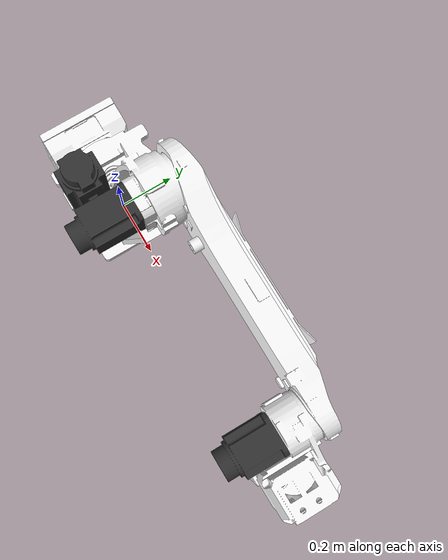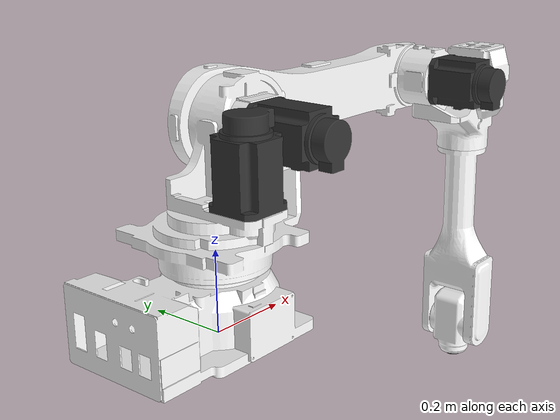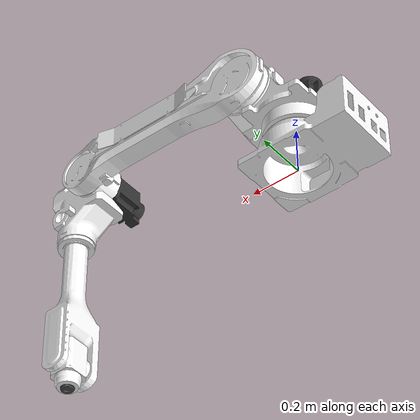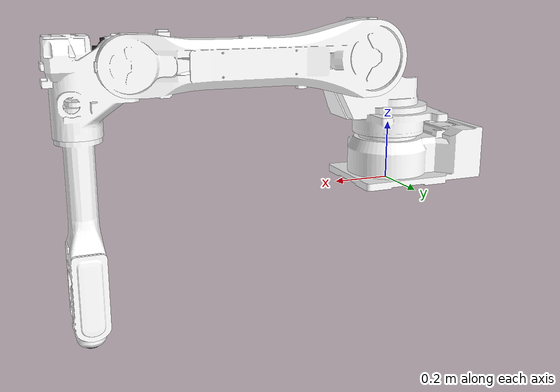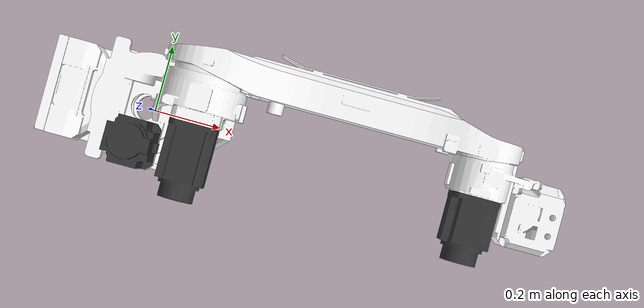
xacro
<?xml version="1.0"?>
<robot name="hdr_robot" xmlns:xacro="http://ros.org/wiki/xacro">
  <material name="white">
    <color rgba="1.0 1.0 1.0 1.0"/>
  </material>
  <material name="gray">
    <color rgba="0.3 0.3 0.3 1.0"/>
  </material>
  <material name="black">
    <color rgba="0.2 0.2 0.2 1.0"/>
  </material>
  <xacro:property name="mesh_scale" value="0.001" />
  <link name="base_link">
    <visual>
      <geometry>
        <mesh filename="file://$(find hdr_description)/meshes/robots/hh020/visual/base_body.stl" scale="${mesh_scale} ${mesh_scale} ${mesh_scale}"/>
      </geometry>
      <material name="white"/>
    </visual>
    <collision>
      <geometry>
        <mesh filename="file://$(find hdr_description)/meshes/robots/hh020/collision/base_body.stl" scale="${mesh_scale} ${mesh_scale} ${mesh_scale}"/>
      </geometry>
    </collision>
    <inertial>
      <mass value="31.2543"/>
      <origin xyz="0 0 0" rpy="0 0 0"/>
      <inertia ixx="0.4278" ixy="0" ixz="0" iyy="0.7085" iyz="0" izz="0.8249"/>
    </inertial>
  </link>
  <link name="lower_frame_link">
    <visual>
      <geometry>
        <mesh filename="file://$(find hdr_description)/meshes/robots/hh020/visual/lower_frame.stl" scale="${mesh_scale} ${mesh_scale} ${mesh_scale}"/>
      </geometry>
      <material name="white"/>
    </visual>
    <collision>
      <geometry>
        <mesh filename="file://$(find hdr_description)/meshes/robots/hh020/collision/lower_frame.stl" scale="${mesh_scale} ${mesh_scale} ${mesh_scale}"/>
      </geometry>
    </collision>
    <inertial>
      <mass value="44.2299"/>
      <origin xyz="0 0 0" rpy="0 0 0"/>
      <inertia ixx="1.046" ixy="0" ixz="0" iyy="1.046" iyz="0" izz="1.1643"/>
    </inertial>
  </link>
  <link name="upper_frame_link">
    <visual>
      <geometry>
        <mesh filename="file://$(find hdr_description)/meshes/robots/hh020/visual/upper_frame.stl" scale="${mesh_scale} ${mesh_scale} ${mesh_scale}"/>
      </geometry>
      <material name="white"/>
    </visual>
    <collision>
      <geometry>
        <mesh filename="file://$(find hdr_description)/meshes/robots/hh020/collision/upper_frame.stl" scale="${mesh_scale} ${mesh_scale} ${mesh_scale}"/>
      </geometry>
    </collision>
    <inertial>
      <mass value="22.4028"/>
      <origin xyz="0 0 0" rpy="0 0 0"/>
      <inertia ixx="1.8777" ixy="0" ixz="0" iyy="1.9502" iyz="0" izz="0.1647"/>
    </inertial>
  </link>
  <link name="arm_link">
    <visual>
      <geometry>
        <mesh filename="file://$(find hdr_description)/meshes/robots/hh020/visual/arm.stl" scale="${mesh_scale} ${mesh_scale} ${mesh_scale}"/>
      </geometry>
      <material name="white"/>
    </visual>
    <collision>
      <geometry>
        <mesh filename="file://$(find hdr_description)/meshes/robots/hh020/collision/arm.stl" scale="${mesh_scale} ${mesh_scale} ${mesh_scale}"/>
      </geometry>
    </collision>
    <inertial>
      <mass value="14.2656"/>
      <origin xyz="0 0 0" rpy="0 0 0"/>
      <inertia ixx="0.1905" ixy="0" ixz="0" iyy="0.2375" iyz="0" izz="0.1845"/>
    </inertial>
  </link>
  <link name="wrist_body_link">
    <visual>
      <origin xyz="-0.162 0 0" rpy="0 0 0"/>
      <geometry>
        <mesh filename="file://$(find hdr_description)/meshes/robots/hh020/visual/wrist_body.stl" scale="${mesh_scale} ${mesh_scale} ${mesh_scale}"/>
      </geometry>
      <material name="white"/>
    </visual>
    <collision>
      <origin xyz="-0.162 0 0" rpy="0 0 0"/>
      <geometry>
        <mesh filename="file://$(find hdr_description)/meshes/robots/hh020/collision/wrist_body.stl" scale="${mesh_scale} ${mesh_scale} ${mesh_scale}"/>
      </geometry>
    </collision>
    <inertial>
      <mass value="7.0632"/>
      <origin xyz="0 0 0" rpy="0 0 0"/>
      <inertia ixx="0.0347" ixy="0" ixz="0" iyy="0.2705" iyz="0" izz="0.281"/>
    </inertial>
  </link>
  <link name="wrist_holder_link">
    <visual>
      <origin xyz="0.00186 0 0.0022" rpy="0 0 0"/>
      <geometry>
        <mesh filename="file://$(find hdr_description)/meshes/robots/hh020/visual/wrist_holder.stl" scale="${mesh_scale} ${mesh_scale} ${mesh_scale}"/>
      </geometry>
      <material name="white"/>
    </visual>
    <collision>
      <origin xyz="0.00186 0 0.0022" rpy="0 0 0"/>
      <geometry>
        <mesh filename="file://$(find hdr_description)/meshes/robots/hh020/collision/wrist_holder.stl" scale="${mesh_scale} ${mesh_scale} ${mesh_scale}"/>
      </geometry>
    </collision>
    <inertial>
      <mass value="3.8171"/>
      <origin xyz="0 0 0" rpy="0 0 0"/>
      <inertia ixx="0.0087" ixy="0" ixz="0" iyy="0.0172" iyz="0" izz="0.0182"/>
    </inertial>
  </link>
  <link name="flange_link">
    <visual>
      <geometry>
        <mesh filename="file://$(find hdr_description)/meshes/robots/hh020/visual/flange.stl" scale="${mesh_scale} ${mesh_scale} ${mesh_scale}"/>
      </geometry>
      <material name="gray"/>
    </visual>
    <collision>
      <geometry>
        <mesh filename="file://$(find hdr_description)/meshes/robots/hh020/collision/flange.stl" scale="${mesh_scale} ${mesh_scale} ${mesh_scale}"/>
      </geometry>
    </collision>
    <inertial>
      <mass value="0.4672"/>
      <origin xyz="0 0 0" rpy="0 0 0"/>
      <inertia ixx="0.0002" ixy="0" ixz="0" iyy="0.0001" iyz="0" izz="0.0001"/>
    </inertial>
  </link>
  <link name="motor_s">
    <visual>
      <geometry>
        <mesh filename="file://$(find hdr_description)/meshes/robots/hh020/visual/motor_s.stl" scale="${mesh_scale} ${mesh_scale} ${mesh_scale}"/>
      </geometry>
      <material name="black"/>
    </visual>
    <collision>
      <geometry>
        <mesh filename="file://$(find hdr_description)/meshes/robots/hh020/collision/motor_s.stl" scale="${mesh_scale} ${mesh_scale} ${mesh_scale}"/>
      </geometry>
    </collision>
    <inertial>
      <mass value="0"/>
      <origin xyz="0 0 0" rpy="0 0 0"/>
      <inertia ixx="1e-6" ixy="0" ixz="0" iyy="1e-6" iyz="0" izz="1e-6"/>
    </inertial>
  </link>
  <link name="motor_h">
    <visual>
      <geometry>
        <mesh filename="file://$(find hdr_description)/meshes/robots/hh020/visual/motor_h.stl" scale="${mesh_scale} ${mesh_scale} ${mesh_scale}"/>
      </geometry>
      <material name="black"/>
    </visual>
    <collision>
      <geometry>
        <mesh filename="file://$(find hdr_description)/meshes/robots/hh020/collision/motor_h.stl" scale="${mesh_scale} ${mesh_scale} ${mesh_scale}"/>
      </geometry>
    </collision>
    <inertial>
      <mass value="0"/>
      <origin xyz="0 0 0" rpy="0 0 0"/>
      <inertia ixx="1e-6" ixy="0" ixz="0" iyy="1e-6" iyz="0" izz="1e-6"/>
    </inertial>
  </link>
  <link name="motor_v">
    <visual>
      <geometry>
        <mesh filename="file://$(find hdr_description)/meshes/robots/hh020/visual/motor_v.stl" scale="${mesh_scale} ${mesh_scale} ${mesh_scale}"/>
      </geometry>
      <material name="black"/>
    </visual>
    <collision>
      <geometry>
        <mesh filename="file://$(find hdr_description)/meshes/robots/hh020/collision/motor_v.stl" scale="${mesh_scale} ${mesh_scale} ${mesh_scale}"/>
      </geometry>
    </collision>
    <inertial>
      <mass value="0"/>
      <origin xyz="0 0 0" rpy="0 0 0"/>
      <inertia ixx="1e-6" ixy="0" ixz="0" iyy="1e-6" iyz="0" izz="1e-6"/>
    </inertial>
  </link>

  <joint name="j1" type="revolute">
    <parent link="base_link"/>
    <child link="lower_frame_link"/>
    <origin xyz="0 0 0" rpy="0 0 0"/>
    <axis xyz="0 0 1"/>
    <limit lower="-3.229" upper="3.229" effort="962.91" velocity="3.316"/>
  </joint>
  <joint name="j2" type="revolute">
    <parent link="lower_frame_link"/>
    <child link="upper_frame_link"/>
    <origin xyz="0.160 0 0.4466" rpy="0 1.5708 0"/>
    <axis xyz="0 -1 0"/>
    <limit lower="-1.222" upper="3.403" effort="1043.28" velocity="3.142"/>
  </joint>
  <joint name="j3" type="revolute">
    <parent link="upper_frame_link"/>
    <child link="arm_link"/>
    <origin xyz="0 0 0.770" rpy="0 0 0"/>
    <axis xyz="0 -1 0"/>
    <limit lower="-1.396" upper="3.141" effort="538.056" velocity="3.316"/>
  </joint>
  <joint name="j4" type="revolute">
    <parent link="arm_link"/>
    <child link="wrist_body_link"/>
    <origin xyz="0 0 0.140" rpy="0 0 0"/>
    <axis xyz="1 0 0"/>
    <limit lower="-3.403" upper="3.403" effort="44.91" velocity="6.632"/>
  </joint>
  <joint name="j5" type="revolute">
    <parent link="wrist_body_link"/>
    <child link="wrist_holder_link"/>
    <origin xyz="0.8 0 0" rpy="0 0 0"/>
    <axis xyz="0 -1 0"/>
    <limit lower="-2.356" upper="2.356" effort="43.52" velocity="6.632"/>
  </joint>
  <joint name="j6" type="revolute">
    <parent link="wrist_holder_link"/>
    <child link="flange_link"/>
    <origin xyz="0.112 0 0" rpy="0 0 0"/>
    <axis xyz="1 0 0"/>
    <limit lower="-6.283" upper="6.283" effort="25.6" velocity="10.472"/>
  </joint>

  <joint name="joint_motor_s" type="fixed">
    <parent link="lower_frame_link"/>
    <child link="motor_s"/>
    <origin xyz="0 0 0" rpy="0 0 0"/>
    <axis xyz="1 0 0"/>
  </joint>
  <joint name="joint_motor_h" type="fixed">
    <parent link="lower_frame_link"/>
    <child link="motor_h"/>
    <origin xyz="0 0 0" rpy="0 0 0"/>
    <axis xyz="1 0 0"/>
  </joint>
  <joint name="joint_motor_v" type="fixed">
    <parent link="upper_frame_link"/>
    <child link="motor_v"/>
    <origin xyz="-0.16 0 -0.4466" rpy="0 0 0"/>
    <axis xyz="1 0 0"/>
  </joint>

  <link name="base"/>
  <joint name="base_link-base" type="fixed">
    <origin xyz="0 0 0" rpy="0 0 0"/>
    <parent link="base_link"/>
    <child link="base"/>
  </joint>
  <link name="flange"/>
  <joint name="flange_link-flange" type="fixed">
    <origin xyz="0 0 0" rpy="0 0 0"/>
    <parent link="flange_link"/>
    <child link="flange"/>
  </joint>
  <link name="tool0"/>
  <joint name="flange-tool0" type="fixed">
    <origin xyz="0 0 0" rpy="0 1.5708 0"/>
    <parent link="flange"/>
    <child link="tool0"/>
  </joint>

  <link name="world"/>
  <joint name="world_joint" type="fixed">
    <parent link="world"/>
    <child link="base_link"/>
    <origin xyz="0 0 0" rpy="0 0 0"/>
  </joint>
</robot>
